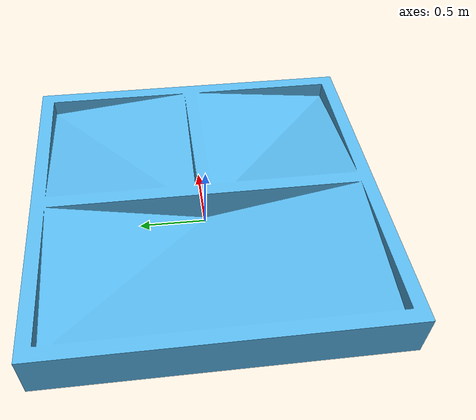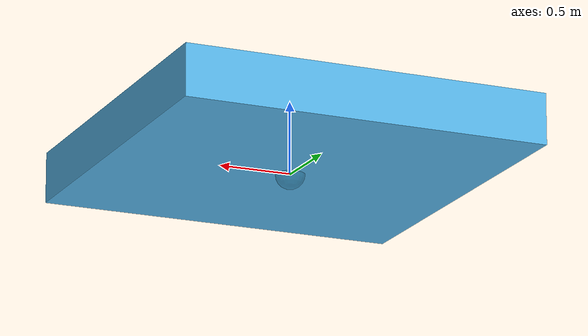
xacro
<?xml version="1.0"?>

<robot name="eval_bowl">

    <material name="OA">
        <color rgba="0.101960784 0.42745098 0.588235294 0.333"/>
    </material>

    <gazebo reference="link_base">
        <turnGravityOff>true</turnGravityOff>
    </gazebo>
    <gazebo>
        <plugin name="gazebo_ros_template" filename="libgazebo_ros_template.so"/>
    </gazebo>

    <link name="link_base">
        <visual>
            <origin xyz="0.0 0.0 0.0"/>
            <geometry>
                <sphere radius="0.1"/>
            </geometry>
            <material name="OA"/>
        </visual>
        <inertial>
            <origin xyz="0.0 0.0 0.25" rpy="0.0 0.0 0.0"/>
            <mass value="10.0"/>
            <inertia  ixx="3.4354166666667" ixy="0.0"  ixz="0.0"  iyy="3.4354166666667"  iyz="0.0"  izz="3.4354166666667"/>
        </inertial>
        <collision>
            <origin xyz="0.0 0.0 0.0" rpy="0.0 0.0 0.0"/>
            <geometry>
                <mesh filename="package://wai_oa_gazebo/resources/reps/eval_bowl/link_eval_bowl_body.dae"/>
            </geometry>
        </collision>
    </link>
    <link name="link_eval_bowl_body">
        <visual>
            <origin xyz="0.0 0.0 0.0"/>
            <geometry>
                <mesh filename="package://wai_oa_gazebo/resources/reps/eval_bowl/link_eval_bowl_body.dae"/>
            </geometry>
        </visual>
    </link>

    <joint name="joint_eval_bowl_body" type="fixed">
        <origin xyz="0.0 0.0 0.0" rpy="0.0 0.0 0.0"/>
        <parent link="link_base"/>
        <child link="link_eval_bowl_body"/>
    </joint>

</robot>
